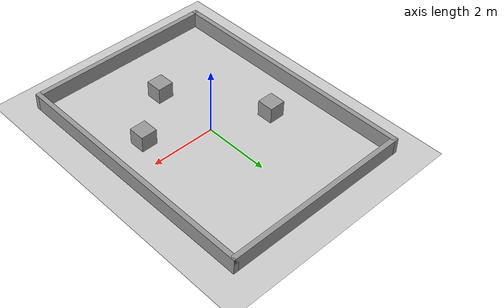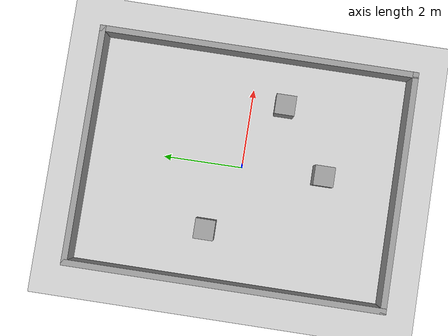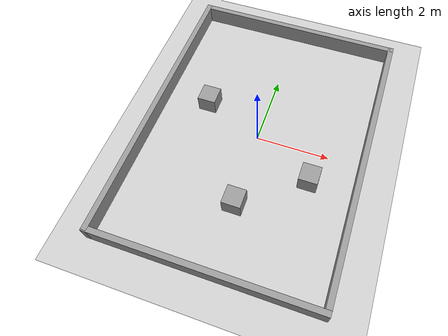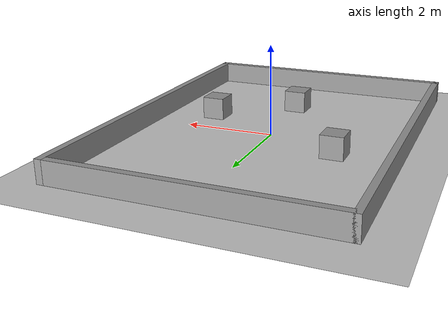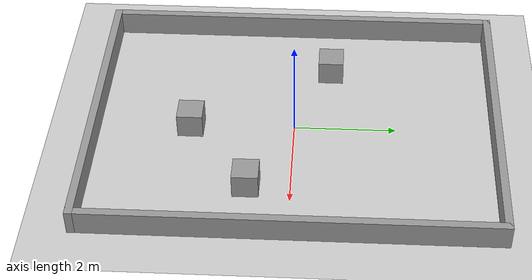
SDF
<sdf version="1.7">
 <world name="default">
  <light name="sun" type="directional">
   <pose>0 0 10 0 -0 0</pose>
   <diffuse>0.8 0.8 0.8 1</diffuse>
   <specular>0.1 0.1 0.1 1</specular>
   <attenuation>
    <range>1000</range>
    <constant>0.9</constant>
    <linear>0.01</linear>
    <quadratic>0.001</quadratic>
   </attenuation>
   <direction>-0.5 0.5 -1</direction>
   <spot><inner_angle>0</inner_angle><outer_angle>0</outer_angle><falloff>0</falloff></spot>
  </light>
  <model name="ground_plane">
   <static>1</static>
   <link name="link">
    <collision name="collision">
     <geometry><plane><normal>0 0 1</normal><size>100 100</size></plane></geometry>
     <surface><friction><ode><mu>100</mu><mu2>50</mu2></ode></friction></surface>
    </collision>
    <visual name="visual">
     <cast_shadows>0</cast_shadows>
     <geometry><plane><normal>0 0 1</normal><size>100 100</size></plane></geometry>
     <material>
      <script><uri>file://media/materials/scripts/gazebo.material</uri><name>Gazebo/Grey</name></script>
     </material>
    </visual>
   </link>
  </model>
  <gravity>0 0 -9.8</gravity>
  <magnetic_field>6e-06 2.3e-05 -4.2e-05</magnetic_field>
  <atmosphere type="adiabatic"/>
  <physics name="default_physics" default="0" type="ode">
   <max_step_size>0.001</max_step_size>
   <real_time_factor>1</real_time_factor>
   <real_time_update_rate>1000</real_time_update_rate>
  </physics>
  <scene><ambient>0.4 0.4 0.4 1</ambient><background>0.7 0.7 0.7 1</background><shadows>1</shadows></scene>
  <spherical_coordinates>
   <surface_model>EARTH_WGS84</surface_model>
   <latitude_deg>0</latitude_deg>
   <longitude_deg>0</longitude_deg>
   <elevation>0</elevation>
   <heading_deg>0</heading_deg>
  </spherical_coordinates>
  <model name="lab_6x8_0">
   <pose>-0.027 0.014 0 0 -0 0</pose>
   <link name="Wall_13">
    <collision name="Wall_13_Collision">
     <geometry><box><size>6 0.15 0.5</size></box></geometry>
     <pose>0 0 0.25 0 -0 0</pose>
    </collision>
    <visual name="Wall_13_Visual">
     <pose>0 0 0.25 0 -0 0</pose>
     <geometry><box><size>6 0.15 0.5</size></box></geometry>
     <material>
      <script><uri>file://media/materials/scripts/gazebo.material</uri><name>Gazebo/Grey</name></script>
      <ambient>1 1 1 1</ambient>
     </material>
    </visual>
    <pose>0 3.925 0 0 -0 0</pose>
   </link>
   <link name="Wall_14">
    <collision name="Wall_14_Collision">
     <geometry><box><size>8 0.15 0.5</size></box></geometry>
     <pose>0 0 0.25 0 -0 0</pose>
    </collision>
    <visual name="Wall_14_Visual">
     <pose>0 0 0.25 0 -0 0</pose>
     <geometry><box><size>8 0.15 0.5</size></box></geometry>
     <material>
      <script><uri>file://media/materials/scripts/gazebo.material</uri><name>Gazebo/Grey</name></script>
      <ambient>1 1 1 1</ambient>
     </material>
    </visual>
    <pose>2.925 0 0 0 0 -1.5708</pose>
   </link>
   <link name="Wall_15">
    <collision name="Wall_15_Collision">
     <geometry><box><size>6 0.15 0.5</size></box></geometry>
     <pose>0 0 0.25 0 -0 0</pose>
    </collision>
    <visual name="Wall_15_Visual">
     <pose>0 0 0.25 0 -0 0</pose>
     <geometry><box><size>6 0.15 0.5</size></box></geometry>
     <material>
      <script><uri>file://media/materials/scripts/gazebo.material</uri><name>Gazebo/Grey</name></script>
      <ambient>1 1 1 1</ambient>
     </material>
    </visual>
    <pose>0 -3.925 0 0 -0 3.14159</pose>
   </link>
   <link name="Wall_8">
    <collision name="Wall_8_Collision">
     <geometry><box><size>8 0.15 0.5</size></box></geometry>
     <pose>0 0 0.25 0 -0 0</pose>
    </collision>
    <visual name="Wall_8_Visual">
     <pose>0 0 0.25 0 -0 0</pose>
     <geometry><box><size>8 0.15 0.5</size></box></geometry>
     <material>
      <script><uri>file://media/materials/scripts/gazebo.material</uri><name>Gazebo/Grey</name></script>
      <ambient>1 1 1 1</ambient>
     </material>
    </visual>
    <pose>-2.925 0 0 0 -0 1.5708</pose>
   </link>
   <static>1</static>
  </model>
  <model name="obstacle_0">
   <link name="link">
    <pose>0 0 0.9 0 -0 0</pose>
    <inertial>
     <mass>1</mass>
     <inertia><ixx>0.042</ixx><ixy>0</ixy><ixz>0</ixz><iyy>0.042</iyy><iyz>0</iyz><izz>0.042</izz></inertia>
    </inertial>
    <collision name="collision">
     <geometry><box><size>0.5 0.5 0.5</size></box></geometry>
     <surface>
      <contact>
       <poissons_ratio>0.347</poissons_ratio>
       <elastic_modulus>8.8e+09</elastic_modulus>
       <ode><kp>100000</kp><kd>100</kd><max_vel>100</max_vel><min_depth>0.001</min_depth></ode>
      </contact>
      <friction>
       <torsional>
        <coefficient>1</coefficient>
        <use_patch_radius>0</use_patch_radius>
        <surface_radius>0.01</surface_radius>
       </torsional>
      </friction>
     </surface>
    </collision>
    <visual name="visual">
     <geometry><box><size>0.5 0.5 0.5</size></box></geometry>
     <material>
      <script><uri>file://media/materials/scripts/gazebo.material</uri><name>Gazebo/Grey</name></script>
     </material>
    </visual>
   </link>
   <pose>-1.64647 0.681065 -0.651024 0 -0 0</pose>
  </model>
  <model name="obstacle_1">
   <link name="link">
    <pose>0 0 0.9 0 -0 0</pose>
    <inertial>
     <mass>1</mass>
     <inertia><ixx>0.042</ixx><ixy>0</ixy><ixz>0</ixz><iyy>0.042</iyy><iyz>0</iyz><izz>0.042</izz></inertia>
    </inertial>
    <collision name="collision">
     <geometry><box><size>0.5 0.5 0.5</size></box></geometry>
     <surface>
      <contact>
       <poissons_ratio>0.347</poissons_ratio>
       <elastic_modulus>8.8e+09</elastic_modulus>
       <ode><kp>100000</kp><kd>100</kd><max_vel>100</max_vel><min_depth>0.001</min_depth></ode>
      </contact>
      <friction>
       <torsional>
        <coefficient>1</coefficient>
        <use_patch_radius>0</use_patch_radius>
        <surface_radius>0.01</surface_radius>
       </torsional>
      </friction>
     </surface>
    </collision>
    <visual name="visual">
     <geometry><box><size>0.5 0.5 0.5</size></box></geometry>
     <material>
      <script><uri>file://media/materials/scripts/gazebo.material</uri><name>Gazebo/Grey</name></script>
     </material>
    </visual>
   </link>
   <pose>0.08192 -2.03105 -0.651024 0 -0 0</pose>
  </model>
  <model name="obstacle_2">
   <link name="link">
    <pose>0 0 0.9 0 -0 0</pose>
    <inertial>
     <mass>1</mass>
     <inertia><ixx>0.042</ixx><ixy>0</ixy><ixz>0</ixz><iyy>0.042</iyy><iyz>0</iyz><izz>0.042</izz></inertia>
    </inertial>
    <collision name="collision">
     <geometry><box><size>0.5 0.5 0.5</size></box></geometry>
     <surface>
      <contact>
       <poissons_ratio>0.347</poissons_ratio>
       <elastic_modulus>8.8e+09</elastic_modulus>
       <ode><kp>100000</kp><kd>100</kd><max_vel>100</max_vel><min_depth>0.001</min_depth></ode>
      </contact>
      <friction>
       <torsional>
        <coefficient>1</coefficient>
        <use_patch_radius>0</use_patch_radius>
        <surface_radius>0.01</surface_radius>
       </torsional>
      </friction>
     </surface>
    </collision>
    <visual name="visual">
     <geometry><box><size>0.5 0.5 0.5</size></box></geometry>
     <material>
      <script><uri>file://media/materials/scripts/gazebo.material</uri><name>Gazebo/Grey</name></script>
     </material>
    </visual>
   </link>
   <pose>1.68304 -0.832156 -0.651024 0 -0 0</pose>
  </model>
 </world>
</sdf>
